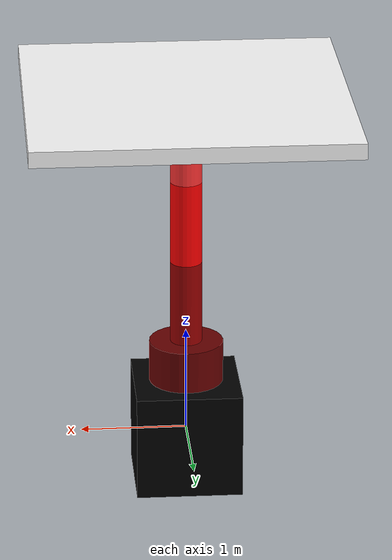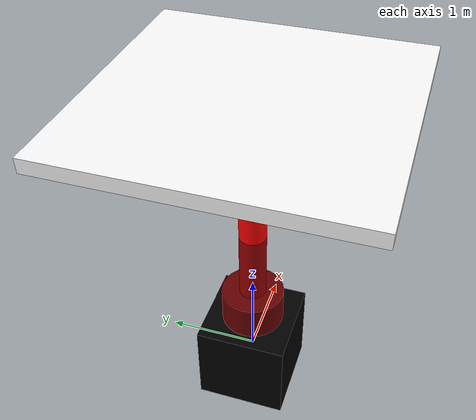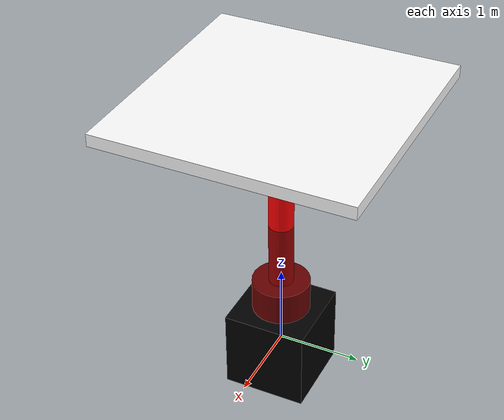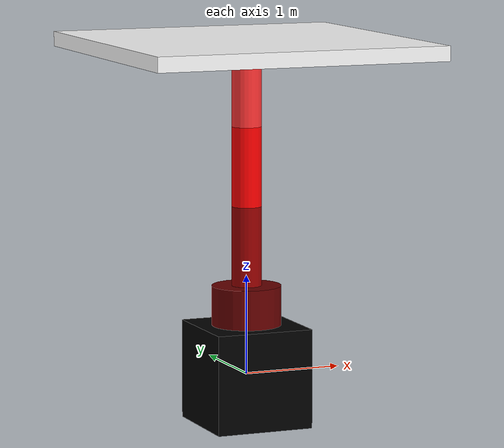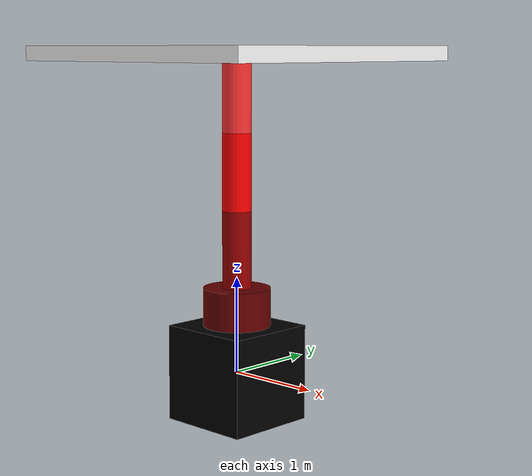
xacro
<?xml version="1.0" ?>

<robot name="mrm" xmlns:xacro="https://www.ros.org/wiki/xacro" >

	<!-- BGN Include -->
	<xacro:include filename="$(find rbt_manipulator)/urdf/links_joint.xacro" />
	<xacro:include filename="$(find rbt_manipulator)/urdf/robot_parameters.xacro" />
	<!-- END Include -->

	<!-- BGN Robot description -->
	<xacro:m_link_box name="${l00}" origin_xyz="0 0 0" origin_rpy="0 0 0" mass="1024" ixx="170.6667" ixy="0" ixz="0" iyy="170.6667" iyz="0" izz="170.6667"
			  size="1 1 1" color_c="Black" rgba="0 0 0 1.0"/>

	<xacro:m_joint name="${l00}__${l01}" type="revolute" axis_xyz="0 0 1" origin_rpy="0 0 0" orgin_xyz="0 0 0.5" parent="${l00}" child="${l01}" limit_e="1000.0"
		       limit_l="-3.14" limit_u="3.14" limit_v="0.5"/>

	<xacro:m_link_cylinder name="${l01}" origin_xyz="0 0 0.2" origin_rpy="0 0 0" mass="57.906" ixx="12.679" ixy="0" ixz="0" iyy="12.679" iyz="0" izz="0.651"
			       radius="0.35" length="0.4" color_c="Red_d" rgba="0.4 0 0 1.0" />

	<xacro:m_joint name="${l01}__${l02}" type="revolute" axis_xyz="0 1 0" origin_rpy="0 0 0" orgin_xyz="0 0 0.4" parent="${l01}" child="${l02}"  limit_e="1000.0"
		       limit_l="0" limit_u="1.5" limit_v="0.5"/>

	<xacro:m_link_cylinder name="${l02}" origin_xyz="0 0 0.4" origin_rpy="0 0 0" mass="57.906" ixx="12.679" ixy="0" ixz="0" iyy="12.679" iyz="0" izz="0.651"
			       radius="0.15" length="0.8" color_c="Red_d1" rgba="0.6 0 0 1.0" />

	<xacro:m_joint name="${l02}__${l03}" type="revolute" axis_xyz="0 1 0" origin_rpy="0 0 0" orgin_xyz="0 0 0.8" parent="${l02}" child="${l03}"  limit_e="1000.0"
		       limit_l="-1.57" limit_u="1.57" limit_v="0.5"/>

	<xacro:m_link_cylinder name="${l03}" origin_xyz="0 0 0.4" origin_rpy="0 0 0" mass="57.906" ixx="12.679" ixy="0" ixz="0" iyy="12.679" iyz="0" izz="0.651"
			       radius="0.15" length="0.8" color_c="Red_d2" rgba="1.0 0 0 1.0" />

	<xacro:m_joint name="${l03}__${l04}" type="revolute" axis_xyz="0 1 0" origin_rpy="0 0 0" orgin_xyz="0 0 0.8" parent="${l03}" child="${l04}"  limit_e="1000.0"
		       limit_l="-1.4" limit_u="1.8" limit_v="0.5"/>

	<xacro:m_link_cylinder name="${l04}" origin_xyz="0 0 0.4" origin_rpy="0 0 0" mass="57.906" ixx="12.679" ixy="0" ixz="0" iyy="12.679" iyz="0" izz="0.651"
			       radius="0.15" length="0.8" color_c="Red_l" rgba="1.0 0.2 0.2 1.0" />

	<xacro:m_joint name="${l04}__${l05}" type="revolute" axis_xyz="0 0 1" origin_rpy="0 0 0" orgin_xyz="0 0 0.8" parent="${l04}" child="${l05}"  limit_e="1000.0"
		       limit_l="-3.14" limit_u="3.14" limit_v="0.5"/>

	<xacro:m_link_box name="${l05}" origin_xyz="0 0 0" origin_rpy="0 0 0" mass="18.056" ixx="0.479" ixy="0" ixz="0" iyy="0.479" iyz="0" izz="0.204" size="3.0 3.0 0.15"
			  color_c="White" rgba="1.0 1.0 1.0 1.0" />

    <!-- END Robot description -->

    <gazebo>
    	<plugin name="gazebo_ros_control" filename="libgazebo_ros_control.so">
    		<robotNamespace>/mrm</robotNamespace>
    	</plugin>
    </gazebo>

</robot>

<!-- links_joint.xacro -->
<robot name="mrm" xmlns:xacro="https://www.ros.org/wiki/xacro" >

	<xacro:macro name="m_joint" params="name type axis_xyz origin_rpy orgin_xyz parent child limit_e limit_l limit_u limit_v" >
		<joint name="${name}" type="${type}">
		 <axis xyz="${axis_xyz}" />
		 <limit effort="${limit_e}" lower="${limit_l}" upper="${limit_u}" velocity="${limit_v}" />
		 <origin rpy="${origin_rpy}" xyz="${orgin_xyz}" />
		 <parent link="${parent}" />
		 <child link="${child}" />
		</joint>
		<transmission name="trans_${name}" >
			<type>transmission_interface/SimpleTransmission</type>
			<joint name="${name}">
				<hardwareInterface>hardware_interface/EffortJointInterface</hardwareInterface>
			</joint>
			<actuator name="motor_${name}">
				<hardwareInterface>hardware_interface/EffortJointInterface</hardwareInterface>
				<mechanicalReduction>1</mechanicalReduction>
			</actuator>
		</transmission>
	</xacro:macro>

	<xacro:macro name="m_link_cylinder" params="name origin_xyz origin_rpy radius length mass ixx ixy ixz iyy iyz izz color_c rgba" >
		<link name="${name}" >
			<inertial>
				<mass value="${mass}" />
				<origin rpy="${origin_rpy}" xyz="${origin_xyz}" />
				<inertia ixx="${ixx}" ixy="${ixy}" ixz="${ixz}" iyy="${iyy}" iyz="${iyz}" izz="${izz}" />
			</inertial>
			<collision>
				<origin rpy="${origin_rpy}" xyz="${origin_xyz}" />
		 		<geometry>
					<cylinder radius="${radius}" length="${length}" />
				</geometry>
			</collision>
			<visual>
		 	 <origin rpy="${origin_rpy}" xyz="${origin_xyz}" />
		 	 <geometry>
		 		<cylinder radius="${radius}" length="${length}" />
	 	 	 </geometry>
	 	 	 <material name="${color_c}">
	 			<color rgba="${rgba}" />
	 		</material>
 	 		</visual>
		</link>
	</xacro:macro>

	<xacro:macro name="m_link_box" params="name origin_xyz origin_rpy size mass ixx ixy ixz iyy iyz izz color_c rgba" >
		<link name="${name}" >
			<inertial>
				<mass value="${mass}" />
				<origin rpy="${origin_rpy}" xyz="${origin_xyz}" />
				<inertia ixx="${ixx}" ixy="${ixy}" ixz="${ixz}" iyy="${iyy}" iyz="${iyz}" izz="${izz}" />
			</inertial>
			<collision>
				<origin rpy="${origin_rpy}" xyz="${origin_xyz}" />
		 	 	<geometry>
		 			<box size="${size}" />
	 	 		</geometry>
			</collision>
			<visual>
		 	 <origin rpy="${origin_rpy}" xyz="${origin_xyz}" />
		 	 <geometry>
		 		<box size="${size}" />
	 	 	 </geometry>
	 	 	 <material name="${color_c}">
	 			<color rgba="${rgba}" />
	 		</material>
 	 		</visual>
		</link>
	</xacro:macro>

	<xacro:macro name="m_link_mesh" params="name origin_xyz origin_rpy meshfile meshscale mass ixx ixy ixz iyy iyz izz" >
		<link name="${name}" >
			<inertial>
				<mass value="${mass}" />
				<origin rpy="${origin_rpy}" xyz="${origin_xyz}" />
				<inertia ixx="${ixx}" ixy="${ixy}" ixz="${ixz}" iyy="${iyy}" iyz="${iyz}" izz="${izz}" />
			</inertial>
			<collision>
				<origin rpy="${origin_rpy}" xyz="${origin_xyz}" />
		 	 	<geometry>
		 			<mesh filename="${meshfile}" scale="${meshscale}" />
	 	 		</geometry>
			</collision>
			<visual>
		 	 <origin rpy="${origin_rpy}" xyz="${origin_xyz}" />
		 	 <geometry>
		 		<mesh filename="${meshfile}" scale="${meshscale}" />
	 	 	 </geometry>
	 	 	 <material name="light_black" />
 	 		</visual>
		</link>
	</xacro:macro>

</robot>

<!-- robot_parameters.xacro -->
<robot xmlns:xacro="http://www.ros.org/wiki/xacro" >
    <xacro:property name="l00" value="base_link" />
    <xacro:property name="l01" value="link_01" />
    <xacro:property name="l02" value="link_02" />
    <xacro:property name="l03" value="link_03" />
    <xacro:property name="l04" value="link_04" />
    <xacro:property name="l05" value="link_05" />
</robot>
